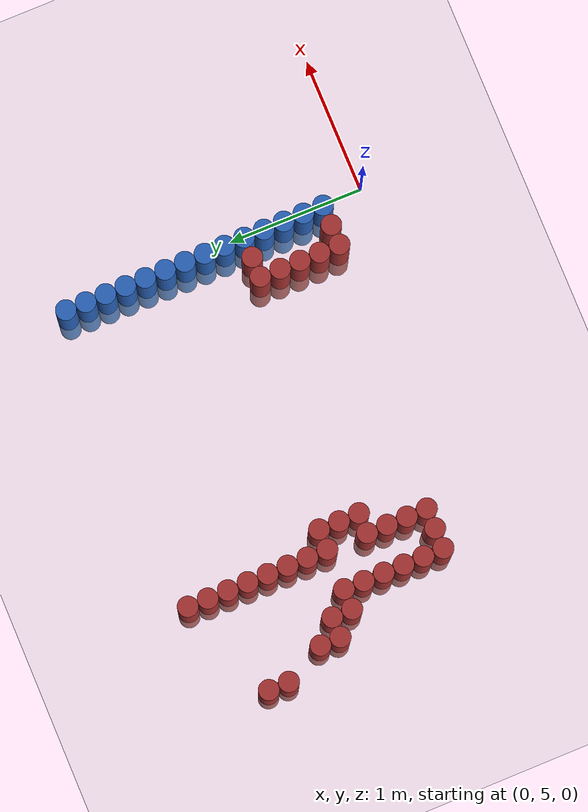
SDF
<sdf version="1.6">
 <world name="default">
  <model name="ground_plane">
   <static>1</static>
   <link name="link">
    <collision name="collision">
     <geometry><plane><normal>0 0 1</normal><size>100 100</size></plane></geometry>
     <surface><friction><ode><mu>100</mu><mu2>50</mu2></ode></friction></surface>
    </collision>
    <visual name="visual">
     <cast_shadows>0</cast_shadows>
     <geometry><plane><normal>0 0 1</normal><size>100 100</size></plane></geometry>
     <material>
      <script><uri>file://media/materials/scripts/gazebo.material</uri><name>Gazebo/Grey</name></script>
     </material>
    </visual>
   </link>
  </model>
  <model name="unit_cylinder_147">
   <static>1</static>
   <pose>-3.075000 6.825000 0.000000 0.000000 0.000000 0.000000</pose>
   <link name="link">
    <inertial>
     <mass>1</mass>
     <inertia><ixx>0.145833</ixx><ixy>0</ixy><ixz>0</ixz><iyy>0.145833</iyy><iyz>0</iyz><izz>0.125</izz></inertia>
    </inertial>
    <collision name="collision">
     <geometry><cylinder><radius>0.075000</radius><length>1</length></cylinder></geometry>
    </collision>
    <visual name="visual">
     <geometry><cylinder><radius>0.075000</radius><length>1</length></cylinder></geometry>
     <material>
      <ambient>0.648000 0.192000 0.192000 1</ambient>
      <diffuse>0.648000 0.192000 0.192000 1</diffuse>
     </material>
     <material>
      <script><name>Gazebo/Grey</name><uri>file://media/materials/scripts/gazebo.material</uri></script>
     </material>
    </visual>
   </link>
  </model>
  <model name="unit_cylinder_148">
   <static>1</static>
   <pose>-3.075000 6.975000 0.000000 0.000000 0.000000 0.000000</pose>
   <link name="link">
    <inertial>
     <mass>1</mass>
     <inertia><ixx>0.145833</ixx><ixy>0</ixy><ixz>0</ixz><iyy>0.145833</iyy><iyz>0</iyz><izz>0.125</izz></inertia>
    </inertial>
    <collision name="collision">
     <geometry><cylinder><radius>0.075000</radius><length>1</length></cylinder></geometry>
    </collision>
    <visual name="visual">
     <geometry><cylinder><radius>0.075000</radius><length>1</length></cylinder></geometry>
     <material>
      <ambient>0.648000 0.192000 0.192000 1</ambient>
      <diffuse>0.648000 0.192000 0.192000 1</diffuse>
     </material>
     <material>
      <script><name>Gazebo/Grey</name><uri>file://media/materials/scripts/gazebo.material</uri></script>
     </material>
    </visual>
   </link>
  </model>
  <model name="unit_cylinder_150">
   <static>1</static>
   <pose>-2.925000 6.375000 0.000000 0.000000 0.000000 0.000000</pose>
   <link name="link">
    <inertial>
     <mass>1</mass>
     <inertia><ixx>0.145833</ixx><ixy>0</ixy><ixz>0</ixz><iyy>0.145833</iyy><iyz>0</iyz><izz>0.125</izz></inertia>
    </inertial>
    <collision name="collision">
     <geometry><cylinder><radius>0.075000</radius><length>1</length></cylinder></geometry>
    </collision>
    <visual name="visual">
     <geometry><cylinder><radius>0.075000</radius><length>1</length></cylinder></geometry>
     <material>
      <ambient>0.648000 0.192000 0.192000 1</ambient>
      <diffuse>0.648000 0.192000 0.192000 1</diffuse>
     </material>
     <material>
      <script><name>Gazebo/Grey</name><uri>file://media/materials/scripts/gazebo.material</uri></script>
     </material>
    </visual>
   </link>
  </model>
  <model name="unit_cylinder_151">
   <static>1</static>
   <pose>-2.925000 6.525000 0.000000 0.000000 0.000000 0.000000</pose>
   <link name="link">
    <inertial>
     <mass>1</mass>
     <inertia><ixx>0.145833</ixx><ixy>0</ixy><ixz>0</ixz><iyy>0.145833</iyy><iyz>0</iyz><izz>0.125</izz></inertia>
    </inertial>
    <collision name="collision">
     <geometry><cylinder><radius>0.075000</radius><length>1</length></cylinder></geometry>
    </collision>
    <visual name="visual">
     <geometry><cylinder><radius>0.075000</radius><length>1</length></cylinder></geometry>
     <material>
      <ambient>0.648000 0.192000 0.192000 1</ambient>
      <diffuse>0.648000 0.192000 0.192000 1</diffuse>
     </material>
     <material>
      <script><name>Gazebo/Grey</name><uri>file://media/materials/scripts/gazebo.material</uri></script>
     </material>
    </visual>
   </link>
  </model>
  <model name="unit_cylinder_153">
   <static>1</static>
   <pose>-2.775000 6.225000 0.000000 0.000000 0.000000 0.000000</pose>
   <link name="link">
    <inertial>
     <mass>1</mass>
     <inertia><ixx>0.145833</ixx><ixy>0</ixy><ixz>0</ixz><iyy>0.145833</iyy><iyz>0</iyz><izz>0.125</izz></inertia>
    </inertial>
    <collision name="collision">
     <geometry><cylinder><radius>0.075000</radius><length>1</length></cylinder></geometry>
    </collision>
    <visual name="visual">
     <geometry><cylinder><radius>0.075000</radius><length>1</length></cylinder></geometry>
     <material>
      <ambient>0.648000 0.192000 0.192000 1</ambient>
      <diffuse>0.648000 0.192000 0.192000 1</diffuse>
     </material>
     <material>
      <script><name>Gazebo/Grey</name><uri>file://media/materials/scripts/gazebo.material</uri></script>
     </material>
    </visual>
   </link>
  </model>
  <model name="unit_cylinder_154">
   <static>1</static>
   <pose>-2.775000 6.375000 0.000000 0.000000 0.000000 0.000000</pose>
   <link name="link">
    <inertial>
     <mass>1</mass>
     <inertia><ixx>0.145833</ixx><ixy>0</ixy><ixz>0</ixz><iyy>0.145833</iyy><iyz>0</iyz><izz>0.125</izz></inertia>
    </inertial>
    <collision name="collision">
     <geometry><cylinder><radius>0.075000</radius><length>1</length></cylinder></geometry>
    </collision>
    <visual name="visual">
     <geometry><cylinder><radius>0.075000</radius><length>1</length></cylinder></geometry>
     <material>
      <ambient>0.648000 0.192000 0.192000 1</ambient>
      <diffuse>0.648000 0.192000 0.192000 1</diffuse>
     </material>
     <material>
      <script><name>Gazebo/Grey</name><uri>file://media/materials/scripts/gazebo.material</uri></script>
     </material>
    </visual>
   </link>
  </model>
  <model name="unit_cylinder_156">
   <static>1</static>
   <pose>-2.625000 5.475000 0.000000 0.000000 0.000000 0.000000</pose>
   <link name="link">
    <inertial>
     <mass>1</mass>
     <inertia><ixx>0.145833</ixx><ixy>0</ixy><ixz>0</ixz><iyy>0.145833</iyy><iyz>0</iyz><izz>0.125</izz></inertia>
    </inertial>
    <collision name="collision">
     <geometry><cylinder><radius>0.075000</radius><length>1</length></cylinder></geometry>
    </collision>
    <visual name="visual">
     <geometry><cylinder><radius>0.075000</radius><length>1</length></cylinder></geometry>
     <material>
      <ambient>0.648000 0.192000 0.192000 1</ambient>
      <diffuse>0.648000 0.192000 0.192000 1</diffuse>
     </material>
     <material>
      <script><name>Gazebo/Grey</name><uri>file://media/materials/scripts/gazebo.material</uri></script>
     </material>
    </visual>
   </link>
  </model>
  <model name="unit_cylinder_157">
   <static>1</static>
   <pose>-2.625000 5.625000 0.000000 0.000000 0.000000 0.000000</pose>
   <link name="link">
    <inertial>
     <mass>1</mass>
     <inertia><ixx>0.145833</ixx><ixy>0</ixy><ixz>0</ixz><iyy>0.145833</iyy><iyz>0</iyz><izz>0.125</izz></inertia>
    </inertial>
    <collision name="collision">
     <geometry><cylinder><radius>0.075000</radius><length>1</length></cylinder></geometry>
    </collision>
    <visual name="visual">
     <geometry><cylinder><radius>0.075000</radius><length>1</length></cylinder></geometry>
     <material>
      <ambient>0.648000 0.192000 0.192000 1</ambient>
      <diffuse>0.648000 0.192000 0.192000 1</diffuse>
     </material>
     <material>
      <script><name>Gazebo/Grey</name><uri>file://media/materials/scripts/gazebo.material</uri></script>
     </material>
    </visual>
   </link>
  </model>
  <model name="unit_cylinder_158">
   <static>1</static>
   <pose>-2.625000 5.775000 0.000000 0.000000 0.000000 0.000000</pose>
   <link name="link">
    <inertial>
     <mass>1</mass>
     <inertia><ixx>0.145833</ixx><ixy>0</ixy><ixz>0</ixz><iyy>0.145833</iyy><iyz>0</iyz><izz>0.125</izz></inertia>
    </inertial>
    <collision name="collision">
     <geometry><cylinder><radius>0.075000</radius><length>1</length></cylinder></geometry>
    </collision>
    <visual name="visual">
     <geometry><cylinder><radius>0.075000</radius><length>1</length></cylinder></geometry>
     <material>
      <ambient>0.648000 0.192000 0.192000 1</ambient>
      <diffuse>0.648000 0.192000 0.192000 1</diffuse>
     </material>
     <material>
      <script><name>Gazebo/Grey</name><uri>file://media/materials/scripts/gazebo.material</uri></script>
     </material>
    </visual>
   </link>
  </model>
  <model name="unit_cylinder_159">
   <static>1</static>
   <pose>-2.625000 5.925000 0.000000 0.000000 0.000000 0.000000</pose>
   <link name="link">
    <inertial>
     <mass>1</mass>
     <inertia><ixx>0.145833</ixx><ixy>0</ixy><ixz>0</ixz><iyy>0.145833</iyy><iyz>0</iyz><izz>0.125</izz></inertia>
    </inertial>
    <collision name="collision">
     <geometry><cylinder><radius>0.075000</radius><length>1</length></cylinder></geometry>
    </collision>
    <visual name="visual">
     <geometry><cylinder><radius>0.075000</radius><length>1</length></cylinder></geometry>
     <material>
      <ambient>0.648000 0.192000 0.192000 1</ambient>
      <diffuse>0.648000 0.192000 0.192000 1</diffuse>
     </material>
     <material>
      <script><name>Gazebo/Grey</name><uri>file://media/materials/scripts/gazebo.material</uri></script>
     </material>
    </visual>
   </link>
  </model>
  <model name="unit_cylinder_160">
   <static>1</static>
   <pose>-2.625000 6.075000 0.000000 0.000000 0.000000 0.000000</pose>
   <link name="link">
    <inertial>
     <mass>1</mass>
     <inertia><ixx>0.145833</ixx><ixy>0</ixy><ixz>0</ixz><iyy>0.145833</iyy><iyz>0</iyz><izz>0.125</izz></inertia>
    </inertial>
    <collision name="collision">
     <geometry><cylinder><radius>0.075000</radius><length>1</length></cylinder></geometry>
    </collision>
    <visual name="visual">
     <geometry><cylinder><radius>0.075000</radius><length>1</length></cylinder></geometry>
     <material>
      <ambient>0.648000 0.192000 0.192000 1</ambient>
      <diffuse>0.648000 0.192000 0.192000 1</diffuse>
     </material>
     <material>
      <script><name>Gazebo/Grey</name><uri>file://media/materials/scripts/gazebo.material</uri></script>
     </material>
    </visual>
   </link>
  </model>
  <model name="unit_cylinder_161">
   <static>1</static>
   <pose>-2.625000 6.225000 0.000000 0.000000 0.000000 0.000000</pose>
   <link name="link">
    <inertial>
     <mass>1</mass>
     <inertia><ixx>0.145833</ixx><ixy>0</ixy><ixz>0</ixz><iyy>0.145833</iyy><iyz>0</iyz><izz>0.125</izz></inertia>
    </inertial>
    <collision name="collision">
     <geometry><cylinder><radius>0.075000</radius><length>1</length></cylinder></geometry>
    </collision>
    <visual name="visual">
     <geometry><cylinder><radius>0.075000</radius><length>1</length></cylinder></geometry>
     <material>
      <ambient>0.648000 0.192000 0.192000 1</ambient>
      <diffuse>0.648000 0.192000 0.192000 1</diffuse>
     </material>
     <material>
      <script><name>Gazebo/Grey</name><uri>file://media/materials/scripts/gazebo.material</uri></script>
     </material>
    </visual>
   </link>
  </model>
  <model name="unit_cylinder_163">
   <static>1</static>
   <pose>-2.475000 5.475000 0.000000 0.000000 0.000000 0.000000</pose>
   <link name="link">
    <inertial>
     <mass>1</mass>
     <inertia><ixx>0.145833</ixx><ixy>0</ixy><ixz>0</ixz><iyy>0.145833</iyy><iyz>0</iyz><izz>0.125</izz></inertia>
    </inertial>
    <collision name="collision">
     <geometry><cylinder><radius>0.075000</radius><length>1</length></cylinder></geometry>
    </collision>
    <visual name="visual">
     <geometry><cylinder><radius>0.075000</radius><length>1</length></cylinder></geometry>
     <material>
      <ambient>0.648000 0.192000 0.192000 1</ambient>
      <diffuse>0.648000 0.192000 0.192000 1</diffuse>
     </material>
     <material>
      <script><name>Gazebo/Grey</name><uri>file://media/materials/scripts/gazebo.material</uri></script>
     </material>
    </visual>
   </link>
  </model>
  <model name="unit_cylinder_165">
   <static>1</static>
   <pose>-2.325000 5.475000 0.000000 0.000000 0.000000 0.000000</pose>
   <link name="link">
    <inertial>
     <mass>1</mass>
     <inertia><ixx>0.145833</ixx><ixy>0</ixy><ixz>0</ixz><iyy>0.145833</iyy><iyz>0</iyz><izz>0.125</izz></inertia>
    </inertial>
    <collision name="collision">
     <geometry><cylinder><radius>0.075000</radius><length>1</length></cylinder></geometry>
    </collision>
    <visual name="visual">
     <geometry><cylinder><radius>0.075000</radius><length>1</length></cylinder></geometry>
     <material>
      <ambient>0.648000 0.192000 0.192000 1</ambient>
      <diffuse>0.648000 0.192000 0.192000 1</diffuse>
     </material>
     <material>
      <script><name>Gazebo/Grey</name><uri>file://media/materials/scripts/gazebo.material</uri></script>
     </material>
    </visual>
   </link>
  </model>
  <model name="unit_cylinder_166">
   <static>1</static>
   <pose>-2.325000 5.625000 0.000000 0.000000 0.000000 0.000000</pose>
   <link name="link">
    <inertial>
     <mass>1</mass>
     <inertia><ixx>0.145833</ixx><ixy>0</ixy><ixz>0</ixz><iyy>0.145833</iyy><iyz>0</iyz><izz>0.125</izz></inertia>
    </inertial>
    <collision name="collision">
     <geometry><cylinder><radius>0.075000</radius><length>1</length></cylinder></geometry>
    </collision>
    <visual name="visual">
     <geometry><cylinder><radius>0.075000</radius><length>1</length></cylinder></geometry>
     <material>
      <ambient>0.648000 0.192000 0.192000 1</ambient>
      <diffuse>0.648000 0.192000 0.192000 1</diffuse>
     </material>
     <material>
      <script><name>Gazebo/Grey</name><uri>file://media/materials/scripts/gazebo.material</uri></script>
     </material>
    </visual>
   </link>
  </model>
  <model name="unit_cylinder_167">
   <static>1</static>
   <pose>-2.325000 5.775000 0.000000 0.000000 0.000000 0.000000</pose>
   <link name="link">
    <inertial>
     <mass>1</mass>
     <inertia><ixx>0.145833</ixx><ixy>0</ixy><ixz>0</ixz><iyy>0.145833</iyy><iyz>0</iyz><izz>0.125</izz></inertia>
    </inertial>
    <collision name="collision">
     <geometry><cylinder><radius>0.075000</radius><length>1</length></cylinder></geometry>
    </collision>
    <visual name="visual">
     <geometry><cylinder><radius>0.075000</radius><length>1</length></cylinder></geometry>
     <material>
      <ambient>0.648000 0.192000 0.192000 1</ambient>
      <diffuse>0.648000 0.192000 0.192000 1</diffuse>
     </material>
     <material>
      <script><name>Gazebo/Grey</name><uri>file://media/materials/scripts/gazebo.material</uri></script>
     </material>
    </visual>
   </link>
  </model>
  <model name="unit_cylinder_168">
   <static>1</static>
   <pose>-2.325000 5.925000 0.000000 0.000000 0.000000 0.000000</pose>
   <link name="link">
    <inertial>
     <mass>1</mass>
     <inertia><ixx>0.145833</ixx><ixy>0</ixy><ixz>0</ixz><iyy>0.145833</iyy><iyz>0</iyz><izz>0.125</izz></inertia>
    </inertial>
    <collision name="collision">
     <geometry><cylinder><radius>0.075000</radius><length>1</length></cylinder></geometry>
    </collision>
    <visual name="visual">
     <geometry><cylinder><radius>0.075000</radius><length>1</length></cylinder></geometry>
     <material>
      <ambient>0.648000 0.192000 0.192000 1</ambient>
      <diffuse>0.648000 0.192000 0.192000 1</diffuse>
     </material>
     <material>
      <script><name>Gazebo/Grey</name><uri>file://media/materials/scripts/gazebo.material</uri></script>
     </material>
    </visual>
   </link>
  </model>
  <model name="unit_cylinder_169">
   <static>1</static>
   <pose>-2.325000 6.225000 0.000000 0.000000 0.000000 0.000000</pose>
   <link name="link">
    <inertial>
     <mass>1</mass>
     <inertia><ixx>0.145833</ixx><ixy>0</ixy><ixz>0</ixz><iyy>0.145833</iyy><iyz>0</iyz><izz>0.125</izz></inertia>
    </inertial>
    <collision name="collision">
     <geometry><cylinder><radius>0.075000</radius><length>1</length></cylinder></geometry>
    </collision>
    <visual name="visual">
     <geometry><cylinder><radius>0.075000</radius><length>1</length></cylinder></geometry>
     <material>
      <ambient>0.648000 0.192000 0.192000 1</ambient>
      <diffuse>0.648000 0.192000 0.192000 1</diffuse>
     </material>
     <material>
      <script><name>Gazebo/Grey</name><uri>file://media/materials/scripts/gazebo.material</uri></script>
     </material>
    </visual>
   </link>
  </model>
  <model name="unit_cylinder_170">
   <static>1</static>
   <pose>-2.325000 6.375000 0.000000 0.000000 0.000000 0.000000</pose>
   <link name="link">
    <inertial>
     <mass>1</mass>
     <inertia><ixx>0.145833</ixx><ixy>0</ixy><ixz>0</ixz><iyy>0.145833</iyy><iyz>0</iyz><izz>0.125</izz></inertia>
    </inertial>
    <collision name="collision">
     <geometry><cylinder><radius>0.075000</radius><length>1</length></cylinder></geometry>
    </collision>
    <visual name="visual">
     <geometry><cylinder><radius>0.075000</radius><length>1</length></cylinder></geometry>
     <material>
      <ambient>0.648000 0.192000 0.192000 1</ambient>
      <diffuse>0.648000 0.192000 0.192000 1</diffuse>
     </material>
     <material>
      <script><name>Gazebo/Grey</name><uri>file://media/materials/scripts/gazebo.material</uri></script>
     </material>
    </visual>
   </link>
  </model>
  <model name="unit_cylinder_171">
   <static>1</static>
   <pose>-2.325000 6.525000 0.000000 0.000000 0.000000 0.000000</pose>
   <link name="link">
    <inertial>
     <mass>1</mass>
     <inertia><ixx>0.145833</ixx><ixy>0</ixy><ixz>0</ixz><iyy>0.145833</iyy><iyz>0</iyz><izz>0.125</izz></inertia>
    </inertial>
    <collision name="collision">
     <geometry><cylinder><radius>0.075000</radius><length>1</length></cylinder></geometry>
    </collision>
    <visual name="visual">
     <geometry><cylinder><radius>0.075000</radius><length>1</length></cylinder></geometry>
     <material>
      <ambient>0.648000 0.192000 0.192000 1</ambient>
      <diffuse>0.648000 0.192000 0.192000 1</diffuse>
     </material>
     <material>
      <script><name>Gazebo/Grey</name><uri>file://media/materials/scripts/gazebo.material</uri></script>
     </material>
    </visual>
   </link>
  </model>
  <model name="unit_cylinder_172">
   <static>1</static>
   <pose>-2.325000 6.675000 0.000000 0.000000 0.000000 0.000000</pose>
   <link name="link">
    <inertial>
     <mass>1</mass>
     <inertia><ixx>0.145833</ixx><ixy>0</ixy><ixz>0</ixz><iyy>0.145833</iyy><iyz>0</iyz><izz>0.125</izz></inertia>
    </inertial>
    <collision name="collision">
     <geometry><cylinder><radius>0.075000</radius><length>1</length></cylinder></geometry>
    </collision>
    <visual name="visual">
     <geometry><cylinder><radius>0.075000</radius><length>1</length></cylinder></geometry>
     <material>
      <ambient>0.648000 0.192000 0.192000 1</ambient>
      <diffuse>0.648000 0.192000 0.192000 1</diffuse>
     </material>
     <material>
      <script><name>Gazebo/Grey</name><uri>file://media/materials/scripts/gazebo.material</uri></script>
     </material>
    </visual>
   </link>
  </model>
  <model name="unit_cylinder_173">
   <static>1</static>
   <pose>-2.325000 6.825000 0.000000 0.000000 0.000000 0.000000</pose>
   <link name="link">
    <inertial>
     <mass>1</mass>
     <inertia><ixx>0.145833</ixx><ixy>0</ixy><ixz>0</ixz><iyy>0.145833</iyy><iyz>0</iyz><izz>0.125</izz></inertia>
    </inertial>
    <collision name="collision">
     <geometry><cylinder><radius>0.075000</radius><length>1</length></cylinder></geometry>
    </collision>
    <visual name="visual">
     <geometry><cylinder><radius>0.075000</radius><length>1</length></cylinder></geometry>
     <material>
      <ambient>0.648000 0.192000 0.192000 1</ambient>
      <diffuse>0.648000 0.192000 0.192000 1</diffuse>
     </material>
     <material>
      <script><name>Gazebo/Grey</name><uri>file://media/materials/scripts/gazebo.material</uri></script>
     </material>
    </visual>
   </link>
  </model>
  <model name="unit_cylinder_174">
   <static>1</static>
   <pose>-2.325000 6.975000 0.000000 0.000000 0.000000 0.000000</pose>
   <link name="link">
    <inertial>
     <mass>1</mass>
     <inertia><ixx>0.145833</ixx><ixy>0</ixy><ixz>0</ixz><iyy>0.145833</iyy><iyz>0</iyz><izz>0.125</izz></inertia>
    </inertial>
    <collision name="collision">
     <geometry><cylinder><radius>0.075000</radius><length>1</length></cylinder></geometry>
    </collision>
    <visual name="visual">
     <geometry><cylinder><radius>0.075000</radius><length>1</length></cylinder></geometry>
     <material>
      <ambient>0.648000 0.192000 0.192000 1</ambient>
      <diffuse>0.648000 0.192000 0.192000 1</diffuse>
     </material>
     <material>
      <script><name>Gazebo/Grey</name><uri>file://media/materials/scripts/gazebo.material</uri></script>
     </material>
    </visual>
   </link>
  </model>
  <model name="unit_cylinder_175">
   <static>1</static>
   <pose>-2.325000 7.125000 0.000000 0.000000 0.000000 0.000000</pose>
   <link name="link">
    <inertial>
     <mass>1</mass>
     <inertia><ixx>0.145833</ixx><ixy>0</ixy><ixz>0</ixz><iyy>0.145833</iyy><iyz>0</iyz><izz>0.125</izz></inertia>
    </inertial>
    <collision name="collision">
     <geometry><cylinder><radius>0.075000</radius><length>1</length></cylinder></geometry>
    </collision>
    <visual name="visual">
     <geometry><cylinder><radius>0.075000</radius><length>1</length></cylinder></geometry>
     <material>
      <ambient>0.648000 0.192000 0.192000 1</ambient>
      <diffuse>0.648000 0.192000 0.192000 1</diffuse>
     </material>
     <material>
      <script><name>Gazebo/Grey</name><uri>file://media/materials/scripts/gazebo.material</uri></script>
     </material>
    </visual>
   </link>
  </model>
  <model name="unit_cylinder_176">
   <static>1</static>
   <pose>-2.325000 7.275000 0.000000 0.000000 0.000000 0.000000</pose>
   <link name="link">
    <inertial>
     <mass>1</mass>
     <inertia><ixx>0.145833</ixx><ixy>0</ixy><ixz>0</ixz><iyy>0.145833</iyy><iyz>0</iyz><izz>0.125</izz></inertia>
    </inertial>
    <collision name="collision">
     <geometry><cylinder><radius>0.075000</radius><length>1</length></cylinder></geometry>
    </collision>
    <visual name="visual">
     <geometry><cylinder><radius>0.075000</radius><length>1</length></cylinder></geometry>
     <material>
      <ambient>0.648000 0.192000 0.192000 1</ambient>
      <diffuse>0.648000 0.192000 0.192000 1</diffuse>
     </material>
     <material>
      <script><name>Gazebo/Grey</name><uri>file://media/materials/scripts/gazebo.material</uri></script>
     </material>
    </visual>
   </link>
  </model>
  <model name="unit_cylinder_179">
   <static>1</static>
   <pose>-2.175000 5.925000 0.000000 0.000000 0.000000 0.000000</pose>
   <link name="link">
    <inertial>
     <mass>1</mass>
     <inertia><ixx>0.145833</ixx><ixy>0</ixy><ixz>0</ixz><iyy>0.145833</iyy><iyz>0</iyz><izz>0.125</izz></inertia>
    </inertial>
    <collision name="collision">
     <geometry><cylinder><radius>0.075000</radius><length>1</length></cylinder></geometry>
    </collision>
    <visual name="visual">
     <geometry><cylinder><radius>0.075000</radius><length>1</length></cylinder></geometry>
     <material>
      <ambient>0.648000 0.192000 0.192000 1</ambient>
      <diffuse>0.648000 0.192000 0.192000 1</diffuse>
     </material>
     <material>
      <script><name>Gazebo/Grey</name><uri>file://media/materials/scripts/gazebo.material</uri></script>
     </material>
    </visual>
   </link>
  </model>
  <model name="unit_cylinder_180">
   <static>1</static>
   <pose>-2.175000 6.075000 0.000000 0.000000 0.000000 0.000000</pose>
   <link name="link">
    <inertial>
     <mass>1</mass>
     <inertia><ixx>0.145833</ixx><ixy>0</ixy><ixz>0</ixz><iyy>0.145833</iyy><iyz>0</iyz><izz>0.125</izz></inertia>
    </inertial>
    <collision name="collision">
     <geometry><cylinder><radius>0.075000</radius><length>1</length></cylinder></geometry>
    </collision>
    <visual name="visual">
     <geometry><cylinder><radius>0.075000</radius><length>1</length></cylinder></geometry>
     <material>
      <ambient>0.648000 0.192000 0.192000 1</ambient>
      <diffuse>0.648000 0.192000 0.192000 1</diffuse>
     </material>
     <material>
      <script><name>Gazebo/Grey</name><uri>file://media/materials/scripts/gazebo.material</uri></script>
     </material>
    </visual>
   </link>
  </model>
  <model name="unit_cylinder_181">
   <static>1</static>
   <pose>-2.175000 6.225000 0.000000 0.000000 0.000000 0.000000</pose>
   <link name="link">
    <inertial>
     <mass>1</mass>
     <inertia><ixx>0.145833</ixx><ixy>0</ixy><ixz>0</ixz><iyy>0.145833</iyy><iyz>0</iyz><izz>0.125</izz></inertia>
    </inertial>
    <collision name="collision">
     <geometry><cylinder><radius>0.075000</radius><length>1</length></cylinder></geometry>
    </collision>
    <visual name="visual">
     <geometry><cylinder><radius>0.075000</radius><length>1</length></cylinder></geometry>
     <material>
      <ambient>0.648000 0.192000 0.192000 1</ambient>
      <diffuse>0.648000 0.192000 0.192000 1</diffuse>
     </material>
     <material>
      <script><name>Gazebo/Grey</name><uri>file://media/materials/scripts/gazebo.material</uri></script>
     </material>
    </visual>
   </link>
  </model>
  <model name="unit_cylinder_200">
   <static>1</static>
   <pose>-0.375000 5.325000 0.000000 0.000000 0.000000 0.000000</pose>
   <link name="link">
    <inertial>
     <mass>1</mass>
     <inertia><ixx>0.145833</ixx><ixy>0</ixy><ixz>0</ixz><iyy>0.145833</iyy><iyz>0</iyz><izz>0.125</izz></inertia>
    </inertial>
    <collision name="collision">
     <geometry><cylinder><radius>0.075000</radius><length>1</length></cylinder></geometry>
    </collision>
    <visual name="visual">
     <geometry><cylinder><radius>0.075000</radius><length>1</length></cylinder></geometry>
     <material>
      <ambient>0.648000 0.192000 0.192000 1</ambient>
      <diffuse>0.648000 0.192000 0.192000 1</diffuse>
     </material>
     <material>
      <script><name>Gazebo/Grey</name><uri>file://media/materials/scripts/gazebo.material</uri></script>
     </material>
    </visual>
   </link>
  </model>
  <model name="unit_cylinder_201">
   <static>1</static>
   <pose>-0.375000 5.475000 0.000000 0.000000 0.000000 0.000000</pose>
   <link name="link">
    <inertial>
     <mass>1</mass>
     <inertia><ixx>0.145833</ixx><ixy>0</ixy><ixz>0</ixz><iyy>0.145833</iyy><iyz>0</iyz><izz>0.125</izz></inertia>
    </inertial>
    <collision name="collision">
     <geometry><cylinder><radius>0.075000</radius><length>1</length></cylinder></geometry>
    </collision>
    <visual name="visual">
     <geometry><cylinder><radius>0.075000</radius><length>1</length></cylinder></geometry>
     <material>
      <ambient>0.648000 0.192000 0.192000 1</ambient>
      <diffuse>0.648000 0.192000 0.192000 1</diffuse>
     </material>
     <material>
      <script><name>Gazebo/Grey</name><uri>file://media/materials/scripts/gazebo.material</uri></script>
     </material>
    </visual>
   </link>
  </model>
  <model name="unit_cylinder_202">
   <static>1</static>
   <pose>-0.375000 5.625000 0.000000 0.000000 0.000000 0.000000</pose>
   <link name="link">
    <inertial>
     <mass>1</mass>
     <inertia><ixx>0.145833</ixx><ixy>0</ixy><ixz>0</ixz><iyy>0.145833</iyy><iyz>0</iyz><izz>0.125</izz></inertia>
    </inertial>
    <collision name="collision">
     <geometry><cylinder><radius>0.075000</radius><length>1</length></cylinder></geometry>
    </collision>
    <visual name="visual">
     <geometry><cylinder><radius>0.075000</radius><length>1</length></cylinder></geometry>
     <material>
      <ambient>0.648000 0.192000 0.192000 1</ambient>
      <diffuse>0.648000 0.192000 0.192000 1</diffuse>
     </material>
     <material>
      <script><name>Gazebo/Grey</name><uri>file://media/materials/scripts/gazebo.material</uri></script>
     </material>
    </visual>
   </link>
  </model>
  <model name="unit_cylinder_203">
   <static>1</static>
   <pose>-0.375000 5.775000 0.000000 0.000000 0.000000 0.000000</pose>
   <link name="link">
    <inertial>
     <mass>1</mass>
     <inertia><ixx>0.145833</ixx><ixy>0</ixy><ixz>0</ixz><iyy>0.145833</iyy><iyz>0</iyz><izz>0.125</izz></inertia>
    </inertial>
    <collision name="collision">
     <geometry><cylinder><radius>0.075000</radius><length>1</length></cylinder></geometry>
    </collision>
    <visual name="visual">
     <geometry><cylinder><radius>0.075000</radius><length>1</length></cylinder></geometry>
     <material>
      <ambient>0.648000 0.192000 0.192000 1</ambient>
      <diffuse>0.648000 0.192000 0.192000 1</diffuse>
     </material>
     <material>
      <script><name>Gazebo/Grey</name><uri>file://media/materials/scripts/gazebo.material</uri></script>
     </material>
    </visual>
   </link>
  </model>
  <model name="unit_cylinder_204">
   <static>1</static>
   <pose>-0.375000 5.925000 0.000000 0.000000 0.000000 0.000000</pose>
   <link name="link">
    <inertial>
     <mass>1</mass>
     <inertia><ixx>0.145833</ixx><ixy>0</ixy><ixz>0</ixz><iyy>0.145833</iyy><iyz>0</iyz><izz>0.125</izz></inertia>
    </inertial>
    <collision name="collision">
     <geometry><cylinder><radius>0.075000</radius><length>1</length></cylinder></geometry>
    </collision>
    <visual name="visual">
     <geometry><cylinder><radius>0.075000</radius><length>1</length></cylinder></geometry>
     <material>
      <ambient>0.648000 0.192000 0.192000 1</ambient>
      <diffuse>0.648000 0.192000 0.192000 1</diffuse>
     </material>
     <material>
      <script><name>Gazebo/Grey</name><uri>file://media/materials/scripts/gazebo.material</uri></script>
     </material>
    </visual>
   </link>
  </model>
  <model name="unit_cylinder_210">
   <static>1</static>
   <pose>-0.225000 5.325000 0.000000 0.000000 0.000000 0.000000</pose>
   <link name="link">
    <inertial>
     <mass>1</mass>
     <inertia><ixx>0.145833</ixx><ixy>0</ixy><ixz>0</ixz><iyy>0.145833</iyy><iyz>0</iyz><izz>0.125</izz></inertia>
    </inertial>
    <collision name="collision">
     <geometry><cylinder><radius>0.075000</radius><length>1</length></cylinder></geometry>
    </collision>
    <visual name="visual">
     <geometry><cylinder><radius>0.075000</radius><length>1</length></cylinder></geometry>
     <material>
      <ambient>0.648000 0.192000 0.192000 1</ambient>
      <diffuse>0.648000 0.192000 0.192000 1</diffuse>
     </material>
     <material>
      <script><name>Gazebo/Grey</name><uri>file://media/materials/scripts/gazebo.material</uri></script>
     </material>
    </visual>
   </link>
  </model>
  <model name="unit_cylinder_211">
   <static>1</static>
   <pose>-0.225000 5.925000 0.000000 0.000000 0.000000 0.000000</pose>
   <link name="link">
    <inertial>
     <mass>1</mass>
     <inertia><ixx>0.145833</ixx><ixy>0</ixy><ixz>0</ixz><iyy>0.145833</iyy><iyz>0</iyz><izz>0.125</izz></inertia>
    </inertial>
    <collision name="collision">
     <geometry><cylinder><radius>0.075000</radius><length>1</length></cylinder></geometry>
    </collision>
    <visual name="visual">
     <geometry><cylinder><radius>0.075000</radius><length>1</length></cylinder></geometry>
     <material>
      <ambient>0.648000 0.192000 0.192000 1</ambient>
      <diffuse>0.648000 0.192000 0.192000 1</diffuse>
     </material>
     <material>
      <script><name>Gazebo/Grey</name><uri>file://media/materials/scripts/gazebo.material</uri></script>
     </material>
    </visual>
   </link>
  </model>
  <model name="unit_cylinder_218">
   <static>1</static>
   <pose>-0.075000 5.325000 0.000000 0.000000 0.000000 0.000000</pose>
   <link name="link">
    <inertial>
     <mass>1</mass>
     <inertia><ixx>0.145833</ixx><ixy>0</ixy><ixz>0</ixz><iyy>0.145833</iyy><iyz>0</iyz><izz>0.125</izz></inertia>
    </inertial>
    <collision name="collision">
     <geometry><cylinder><radius>0.075000</radius><length>1</length></cylinder></geometry>
    </collision>
    <visual name="visual">
     <geometry><cylinder><radius>0.075000</radius><length>1</length></cylinder></geometry>
     <material>
      <ambient>0.152000 0.379000 0.720000 1</ambient>
      <diffuse>0.152000 0.379000 0.720000 1</diffuse>
     </material>
     <material>
      <script><name>Gazebo/Grey</name><uri>file://media/materials/scripts/gazebo.material</uri></script>
     </material>
    </visual>
   </link>
  </model>
  <model name="unit_cylinder_219">
   <static>1</static>
   <pose>-0.075000 5.475000 0.000000 0.000000 0.000000 0.000000</pose>
   <link name="link">
    <inertial>
     <mass>1</mass>
     <inertia><ixx>0.145833</ixx><ixy>0</ixy><ixz>0</ixz><iyy>0.145833</iyy><iyz>0</iyz><izz>0.125</izz></inertia>
    </inertial>
    <collision name="collision">
     <geometry><cylinder><radius>0.075000</radius><length>1</length></cylinder></geometry>
    </collision>
    <visual name="visual">
     <geometry><cylinder><radius>0.075000</radius><length>1</length></cylinder></geometry>
     <material>
      <ambient>0.152000 0.379000 0.720000 1</ambient>
      <diffuse>0.152000 0.379000 0.720000 1</diffuse>
     </material>
     <material>
      <script><name>Gazebo/Grey</name><uri>file://media/materials/scripts/gazebo.material</uri></script>
     </material>
    </visual>
   </link>
  </model>
  <model name="unit_cylinder_220">
   <static>1</static>
   <pose>-0.075000 5.625000 0.000000 0.000000 0.000000 0.000000</pose>
   <link name="link">
    <inertial>
     <mass>1</mass>
     <inertia><ixx>0.145833</ixx><ixy>0</ixy><ixz>0</ixz><iyy>0.145833</iyy><iyz>0</iyz><izz>0.125</izz></inertia>
    </inertial>
    <collision name="collision">
     <geometry><cylinder><radius>0.075000</radius><length>1</length></cylinder></geometry>
    </collision>
    <visual name="visual">
     <geometry><cylinder><radius>0.075000</radius><length>1</length></cylinder></geometry>
     <material>
      <ambient>0.152000 0.379000 0.720000 1</ambient>
      <diffuse>0.152000 0.379000 0.720000 1</diffuse>
     </material>
     <material>
      <script><name>Gazebo/Grey</name><uri>file://media/materials/scripts/gazebo.material</uri></script>
     </material>
    </visual>
   </link>
  </model>
  <model name="unit_cylinder_221">
   <static>1</static>
   <pose>-0.075000 5.775000 0.000000 0.000000 0.000000 0.000000</pose>
   <link name="link">
    <inertial>
     <mass>1</mass>
     <inertia><ixx>0.145833</ixx><ixy>0</ixy><ixz>0</ixz><iyy>0.145833</iyy><iyz>0</iyz><izz>0.125</izz></inertia>
    </inertial>
    <collision name="collision">
     <geometry><cylinder><radius>0.075000</radius><length>1</length></cylinder></geometry>
    </collision>
    <visual name="visual">
     <geometry><cylinder><radius>0.075000</radius><length>1</length></cylinder></geometry>
     <material>
      <ambient>0.152000 0.379000 0.720000 1</ambient>
      <diffuse>0.152000 0.379000 0.720000 1</diffuse>
     </material>
     <material>
      <script><name>Gazebo/Grey</name><uri>file://media/materials/scripts/gazebo.material</uri></script>
     </material>
    </visual>
   </link>
  </model>
  <model name="unit_cylinder_222">
   <static>1</static>
   <pose>-0.075000 5.925000 0.000000 0.000000 0.000000 0.000000</pose>
   <link name="link">
    <inertial>
     <mass>1</mass>
     <inertia><ixx>0.145833</ixx><ixy>0</ixy><ixz>0</ixz><iyy>0.145833</iyy><iyz>0</iyz><izz>0.125</izz></inertia>
    </inertial>
    <collision name="collision">
     <geometry><cylinder><radius>0.075000</radius><length>1</length></cylinder></geometry>
    </collision>
    <visual name="visual">
     <geometry><cylinder><radius>0.075000</radius><length>1</length></cylinder></geometry>
     <material>
      <ambient>0.152000 0.379000 0.720000 1</ambient>
      <diffuse>0.152000 0.379000 0.720000 1</diffuse>
     </material>
     <material>
      <script><name>Gazebo/Grey</name><uri>file://media/materials/scripts/gazebo.material</uri></script>
     </material>
    </visual>
   </link>
  </model>
  <model name="unit_cylinder_223">
   <static>1</static>
   <pose>-0.075000 6.075000 0.000000 0.000000 0.000000 0.000000</pose>
   <link name="link">
    <inertial>
     <mass>1</mass>
     <inertia><ixx>0.145833</ixx><ixy>0</ixy><ixz>0</ixz><iyy>0.145833</iyy><iyz>0</iyz><izz>0.125</izz></inertia>
    </inertial>
    <collision name="collision">
     <geometry><cylinder><radius>0.075000</radius><length>1</length></cylinder></geometry>
    </collision>
    <visual name="visual">
     <geometry><cylinder><radius>0.075000</radius><length>1</length></cylinder></geometry>
     <material>
      <ambient>0.152000 0.379000 0.720000 1</ambient>
      <diffuse>0.152000 0.379000 0.720000 1</diffuse>
     </material>
     <material>
      <script><name>Gazebo/Grey</name><uri>file://media/materials/scripts/gazebo.material</uri></script>
     </material>
    </visual>
   </link>
  </model>
  <model name="unit_cylinder_224">
   <static>1</static>
   <pose>-0.075000 6.225000 0.000000 0.000000 0.000000 0.000000</pose>
   <link name="link">
    <inertial>
     <mass>1</mass>
     <inertia><ixx>0.145833</ixx><ixy>0</ixy><ixz>0</ixz><iyy>0.145833</iyy><iyz>0</iyz><izz>0.125</izz></inertia>
    </inertial>
    <collision name="collision">
     <geometry><cylinder><radius>0.075000</radius><length>1</length></cylinder></geometry>
    </collision>
    <visual name="visual">
     <geometry><cylinder><radius>0.075000</radius><length>1</length></cylinder></geometry>
     <material>
      <ambient>0.152000 0.379000 0.720000 1</ambient>
      <diffuse>0.152000 0.379000 0.720000 1</diffuse>
     </material>
     <material>
      <script><name>Gazebo/Grey</name><uri>file://media/materials/scripts/gazebo.material</uri></script>
     </material>
    </visual>
   </link>
  </model>
  <model name="unit_cylinder_225">
   <static>1</static>
   <pose>-0.075000 6.375000 0.000000 0.000000 0.000000 0.000000</pose>
   <link name="link">
    <inertial>
     <mass>1</mass>
     <inertia><ixx>0.145833</ixx><ixy>0</ixy><ixz>0</ixz><iyy>0.145833</iyy><iyz>0</iyz><izz>0.125</izz></inertia>
    </inertial>
    <collision name="collision">
     <geometry><cylinder><radius>0.075000</radius><length>1</length></cylinder></geometry>
    </collision>
    <visual name="visual">
     <geometry><cylinder><radius>0.075000</radius><length>1</length></cylinder></geometry>
     <material>
      <ambient>0.152000 0.379000 0.720000 1</ambient>
      <diffuse>0.152000 0.379000 0.720000 1</diffuse>
     </material>
     <material>
      <script><name>Gazebo/Grey</name><uri>file://media/materials/scripts/gazebo.material</uri></script>
     </material>
    </visual>
   </link>
  </model>
  <model name="unit_cylinder_226">
   <static>1</static>
   <pose>-0.075000 6.525000 0.000000 0.000000 0.000000 0.000000</pose>
   <link name="link">
    <inertial>
     <mass>1</mass>
     <inertia><ixx>0.145833</ixx><ixy>0</ixy><ixz>0</ixz><iyy>0.145833</iyy><iyz>0</iyz><izz>0.125</izz></inertia>
    </inertial>
    <collision name="collision">
     <geometry><cylinder><radius>0.075000</radius><length>1</length></cylinder></geometry>
    </collision>
    <visual name="visual">
     <geometry><cylinder><radius>0.075000</radius><length>1</length></cylinder></geometry>
     <material>
      <ambient>0.152000 0.379000 0.720000 1</ambient>
      <diffuse>0.152000 0.379000 0.720000 1</diffuse>
     </material>
     <material>
      <script><name>Gazebo/Grey</name><uri>file://media/materials/scripts/gazebo.material</uri></script>
     </material>
    </visual>
   </link>
  </model>
  <model name="unit_cylinder_227">
   <static>1</static>
   <pose>-0.075000 6.675000 0.000000 0.000000 0.000000 0.000000</pose>
   <link name="link">
    <inertial>
     <mass>1</mass>
     <inertia><ixx>0.145833</ixx><ixy>0</ixy><ixz>0</ixz><iyy>0.145833</iyy><iyz>0</iyz><izz>0.125</izz></inertia>
    </inertial>
    <collision name="collision">
     <geometry><cylinder><radius>0.075000</radius><length>1</length></cylinder></geometry>
    </collision>
    <visual name="visual">
     <geometry><cylinder><radius>0.075000</radius><length>1</length></cylinder></geometry>
     <material>
      <ambient>0.152000 0.379000 0.720000 1</ambient>
      <diffuse>0.152000 0.379000 0.720000 1</diffuse>
     </material>
     <material>
      <script><name>Gazebo/Grey</name><uri>file://media/materials/scripts/gazebo.material</uri></script>
     </material>
    </visual>
   </link>
  </model>
  <model name="unit_cylinder_228">
   <static>1</static>
   <pose>-0.075000 6.825000 0.000000 0.000000 0.000000 0.000000</pose>
   <link name="link">
    <inertial>
     <mass>1</mass>
     <inertia><ixx>0.145833</ixx><ixy>0</ixy><ixz>0</ixz><iyy>0.145833</iyy><iyz>0</iyz><izz>0.125</izz></inertia>
    </inertial>
    <collision name="collision">
     <geometry><cylinder><radius>0.075000</radius><length>1</length></cylinder></geometry>
    </collision>
    <visual name="visual">
     <geometry><cylinder><radius>0.075000</radius><length>1</length></cylinder></geometry>
     <material>
      <ambient>0.152000 0.379000 0.720000 1</ambient>
      <diffuse>0.152000 0.379000 0.720000 1</diffuse>
     </material>
     <material>
      <script><name>Gazebo/Grey</name><uri>file://media/materials/scripts/gazebo.material</uri></script>
     </material>
    </visual>
   </link>
  </model>
  <model name="unit_cylinder_229">
   <static>1</static>
   <pose>-0.075000 6.975000 0.000000 0.000000 0.000000 0.000000</pose>
   <link name="link">
    <inertial>
     <mass>1</mass>
     <inertia><ixx>0.145833</ixx><ixy>0</ixy><ixz>0</ixz><iyy>0.145833</iyy><iyz>0</iyz><izz>0.125</izz></inertia>
    </inertial>
    <collision name="collision">
     <geometry><cylinder><radius>0.075000</radius><length>1</length></cylinder></geometry>
    </collision>
    <visual name="visual">
     <geometry><cylinder><radius>0.075000</radius><length>1</length></cylinder></geometry>
     <material>
      <ambient>0.152000 0.379000 0.720000 1</ambient>
      <diffuse>0.152000 0.379000 0.720000 1</diffuse>
     </material>
     <material>
      <script><name>Gazebo/Grey</name><uri>file://media/materials/scripts/gazebo.material</uri></script>
     </material>
    </visual>
   </link>
  </model>
  <model name="unit_cylinder_230">
   <static>1</static>
   <pose>-0.075000 7.125000 0.000000 0.000000 0.000000 0.000000</pose>
   <link name="link">
    <inertial>
     <mass>1</mass>
     <inertia><ixx>0.145833</ixx><ixy>0</ixy><ixz>0</ixz><iyy>0.145833</iyy><iyz>0</iyz><izz>0.125</izz></inertia>
    </inertial>
    <collision name="collision">
     <geometry><cylinder><radius>0.075000</radius><length>1</length></cylinder></geometry>
    </collision>
    <visual name="visual">
     <geometry><cylinder><radius>0.075000</radius><length>1</length></cylinder></geometry>
     <material>
      <ambient>0.152000 0.379000 0.720000 1</ambient>
      <diffuse>0.152000 0.379000 0.720000 1</diffuse>
     </material>
     <material>
      <script><name>Gazebo/Grey</name><uri>file://media/materials/scripts/gazebo.material</uri></script>
     </material>
    </visual>
   </link>
  </model>
  <model name="unit_cylinder_231">
   <static>1</static>
   <pose>-0.075000 7.275000 0.000000 0.000000 0.000000 0.000000</pose>
   <link name="link">
    <inertial>
     <mass>1</mass>
     <inertia><ixx>0.145833</ixx><ixy>0</ixy><ixz>0</ixz><iyy>0.145833</iyy><iyz>0</iyz><izz>0.125</izz></inertia>
    </inertial>
    <collision name="collision">
     <geometry><cylinder><radius>0.075000</radius><length>1</length></cylinder></geometry>
    </collision>
    <visual name="visual">
     <geometry><cylinder><radius>0.075000</radius><length>1</length></cylinder></geometry>
     <material>
      <ambient>0.152000 0.379000 0.720000 1</ambient>
      <diffuse>0.152000 0.379000 0.720000 1</diffuse>
     </material>
     <material>
      <script><name>Gazebo/Grey</name><uri>file://media/materials/scripts/gazebo.material</uri></script>
     </material>
    </visual>
   </link>
  </model>
 </world>
</sdf>
